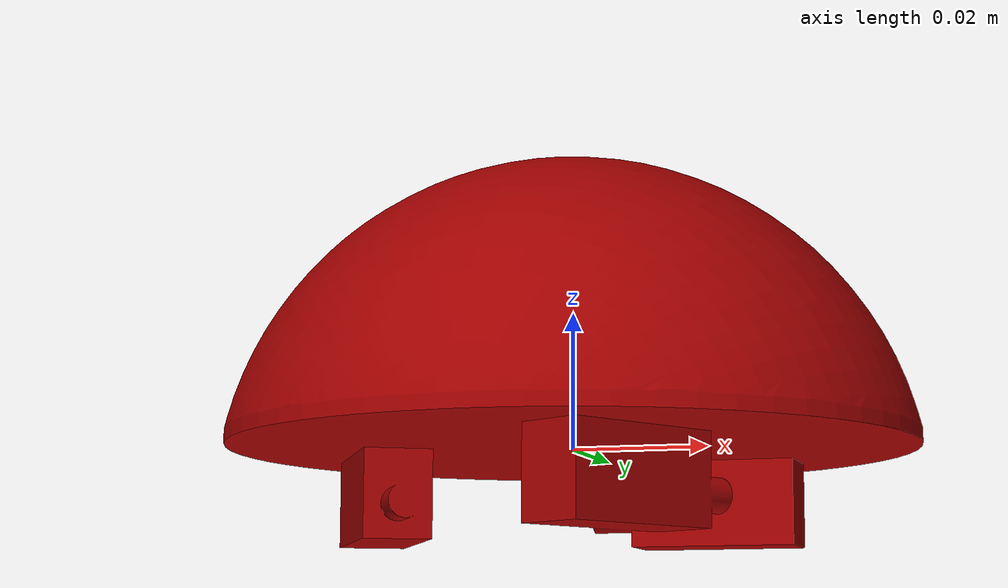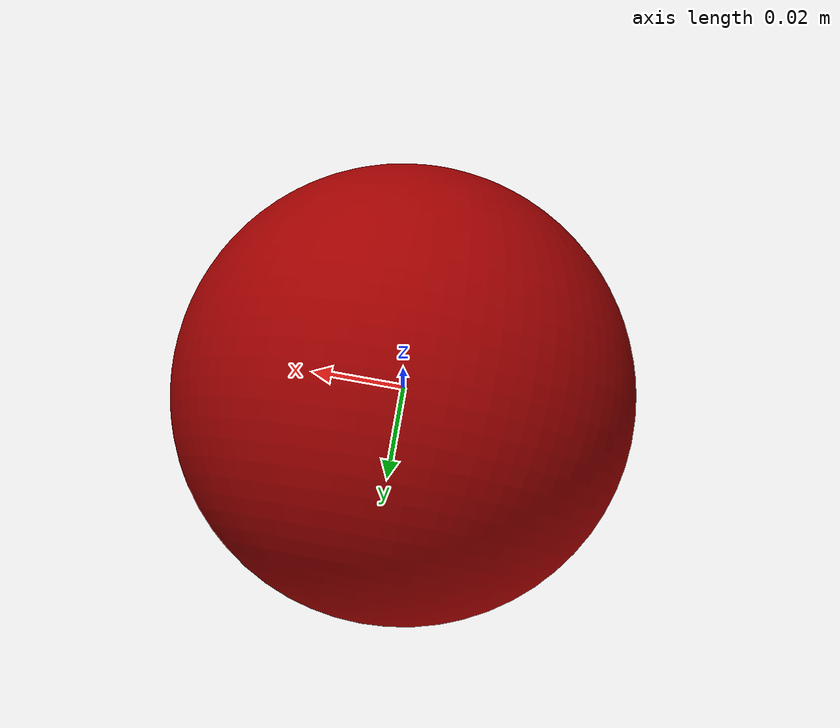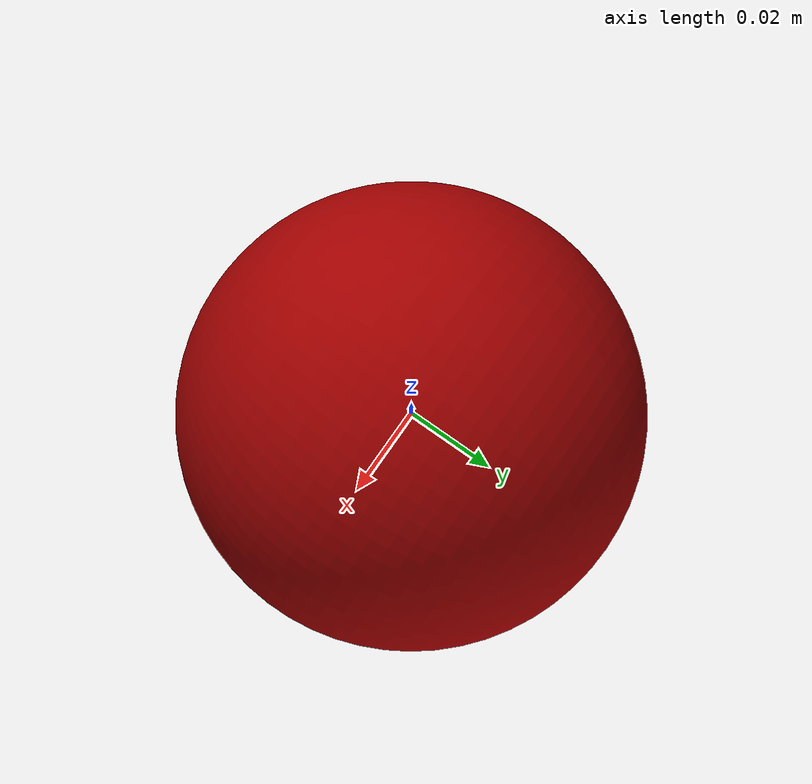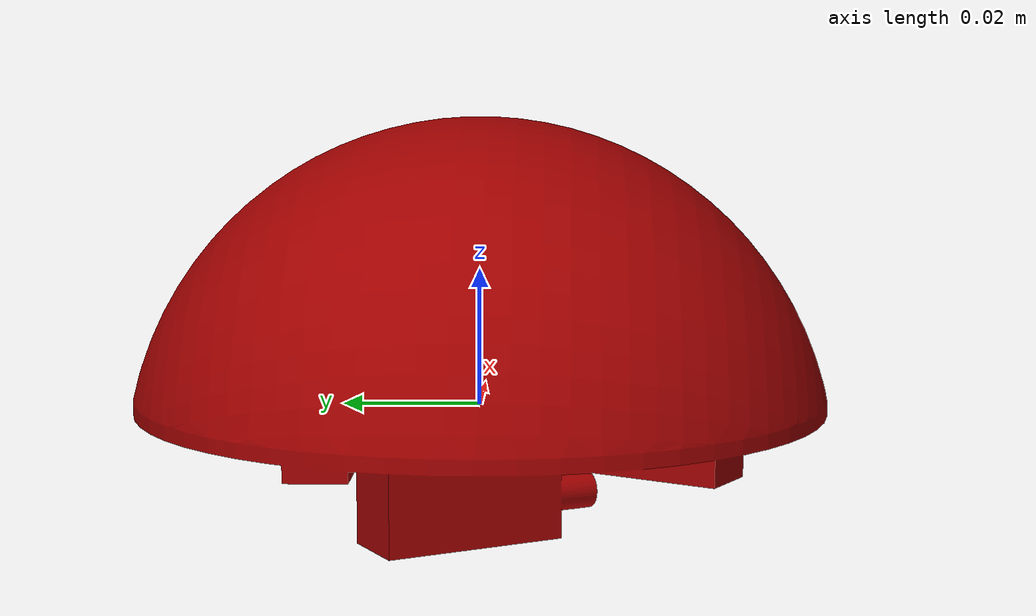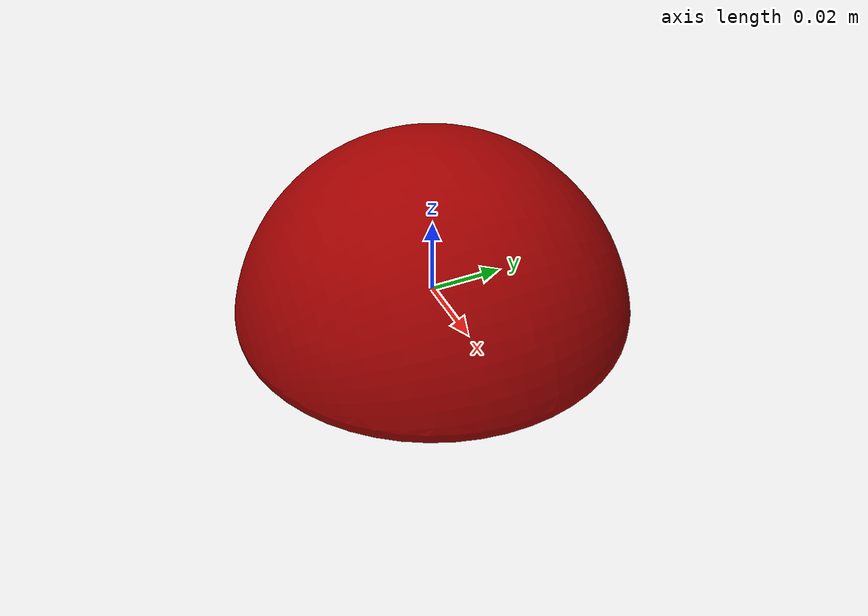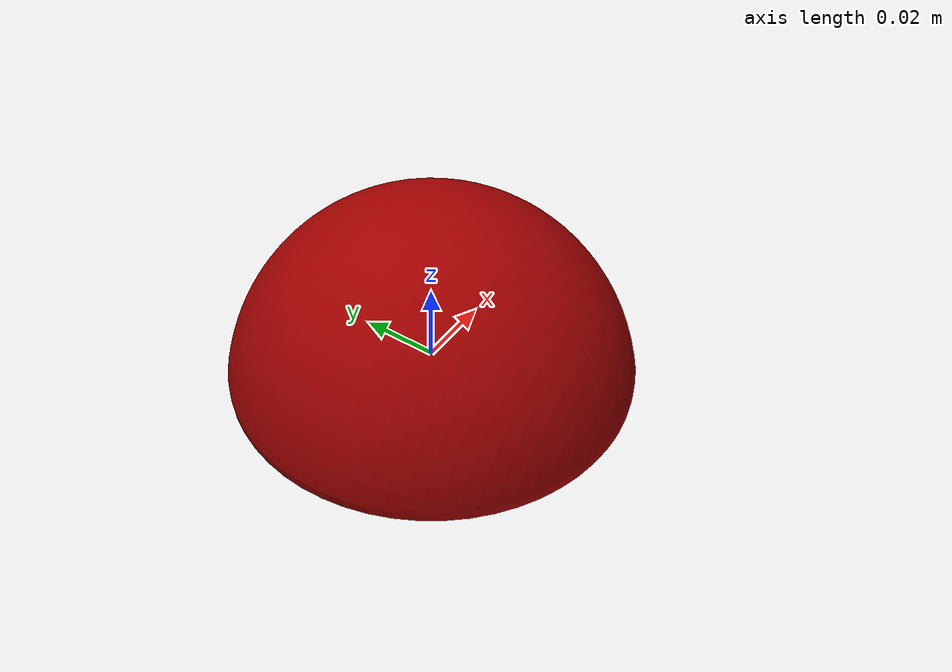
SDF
<?xml version="1.0" ?>
<sdf version="1.5">
  <model name="gurdy">
    <link name="head_link">
      <pose>0 0 0 0 0 0</pose>
      <inertial>
        <pose>0 0 0.02 0 0 0</pose>
        <inertia>
          <ixx>0.000455</ixx>
          <ixy>0</ixy>
          <ixz>0</ixz>
          <iyy>0.000455</iyy>
          <iyz>0</iyz>
          <izz>0.00075</izz>
        </inertia>
        <mass>0.6</mass>
      </inertial>
      <collision name="collision">
        <pose>0 0 0.02 0 0 0</pose>
        <geometry>
          <cylinder>
            <radius>0.05</radius>
            <length>0.04</length>
          </cylinder>
        </geometry>
        <surface>
          <friction>
            <ode>
              <mu>10</mu>
              <mu2>10</mu2>
              <fdir1>0 0 0</fdir1>
              <slip1>0</slip1>
              <slip2>0</slip2>
            </ode>
          </friction>
        </surface>
      </collision>
      <visual name="visual">
        <pose>0 0 0 0 0 0</pose>
        <geometry>
          <mesh>
            <uri>model://gurdy/meshes/gurdy_head_v2.dae</uri>
          </mesh>
        </geometry>
      </visual>
    </link>

  </model>
</sdf>
